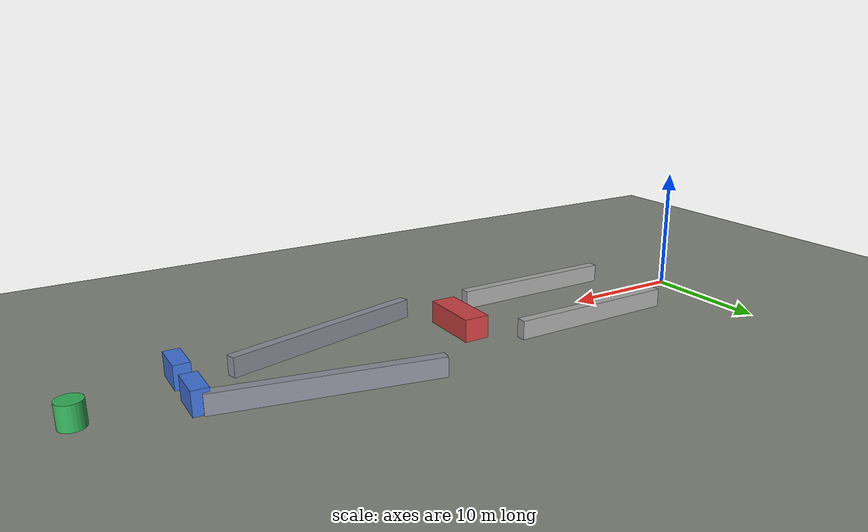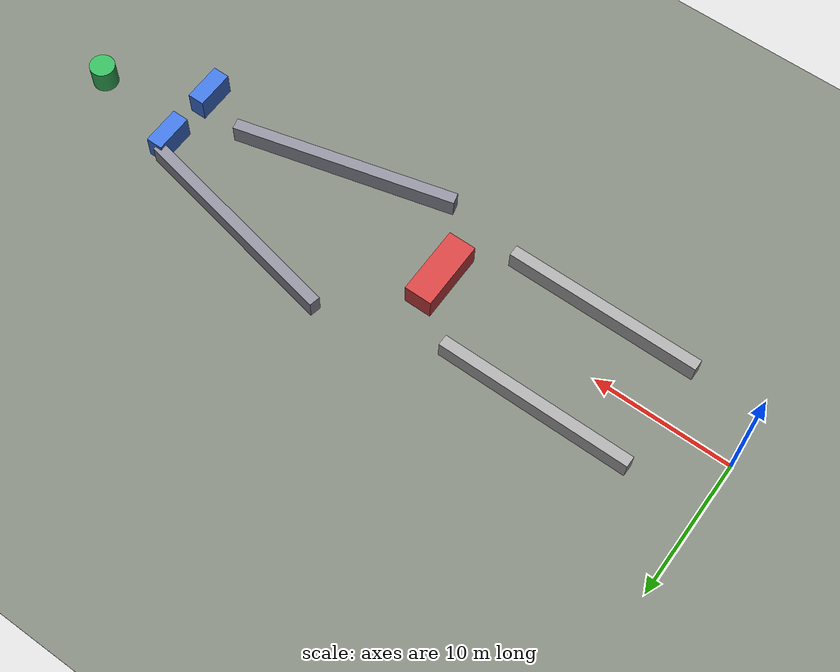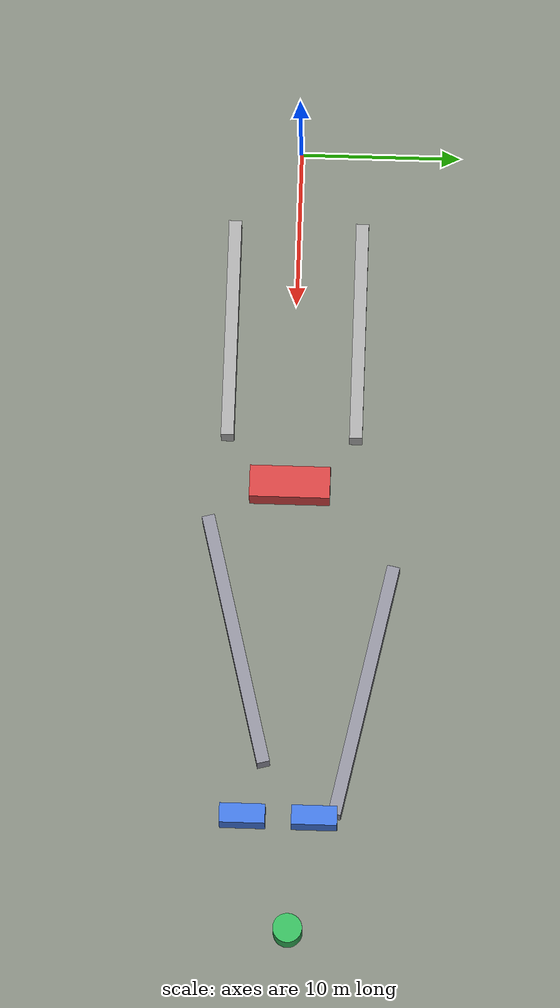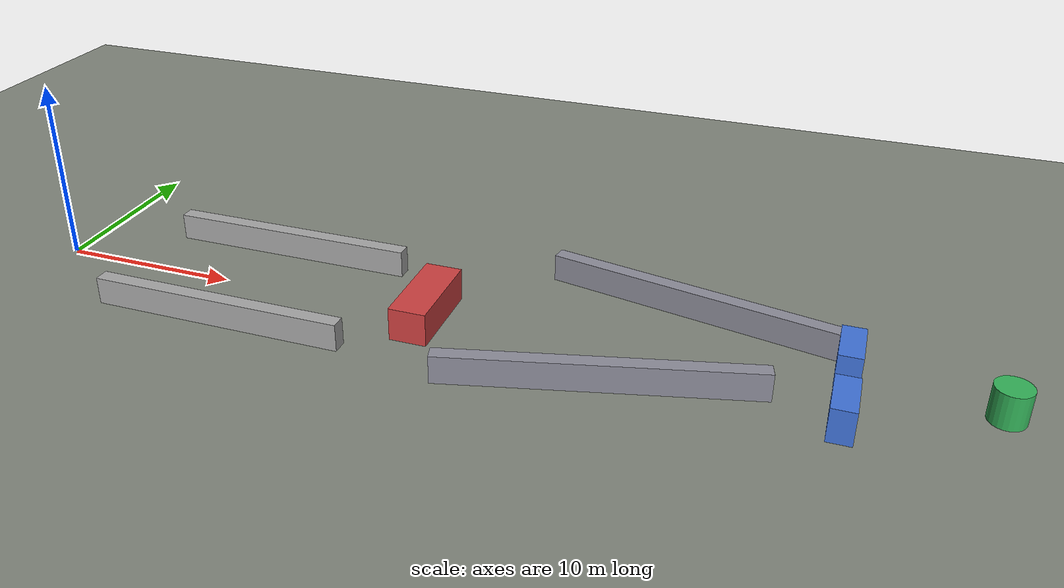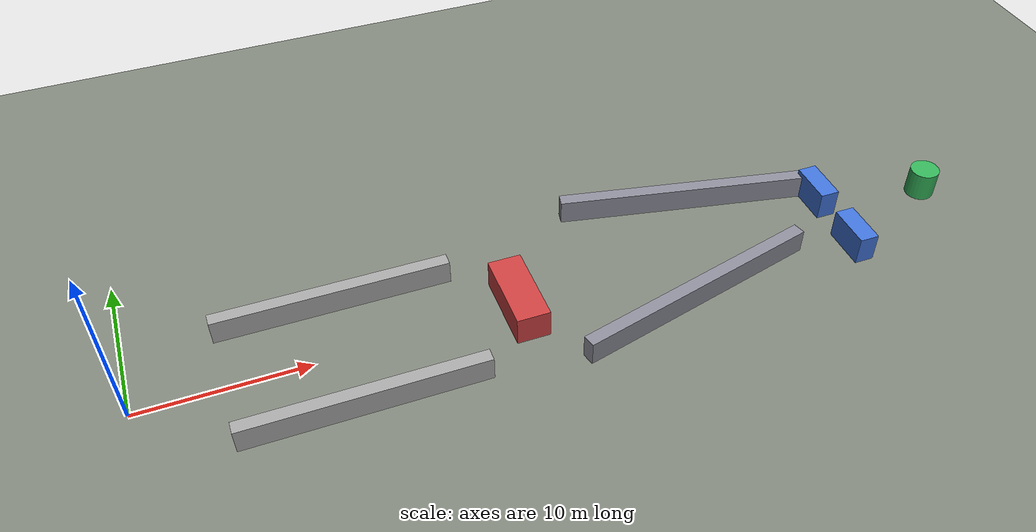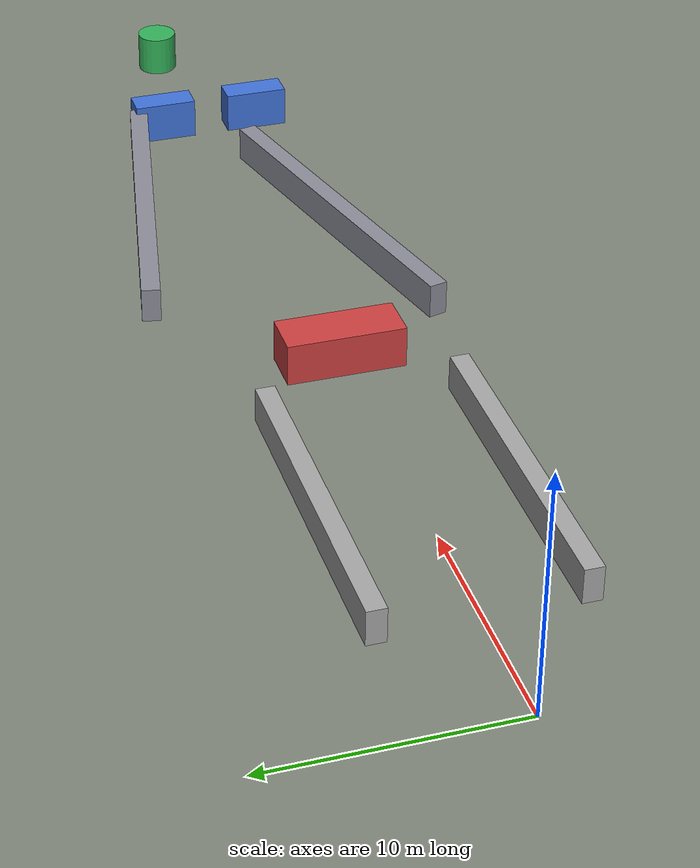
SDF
<?xml version="1.0" ?>
<sdf version="1.7">
  <world name="structured_maze_world">

    <plugin filename="libignition-gazebo-physics-system.so"
            name="ignition::gazebo::systems::Physics"/>
    <plugin filename="libignition-gazebo-user-commands-system.so"
            name="ignition::gazebo::systems::UserCommands"/>
    <plugin filename="libignition-gazebo-scene-broadcaster-system.so"
            name="ignition::gazebo::systems::SceneBroadcaster"/>
    <plugin filename="libignition-gazebo-sensors-system.so"
            name="ignition::gazebo::systems::Sensors"/>

    <physics name="default" type="ignored">
      <max_step_size>0.001</max_step_size>
      <real_time_factor>1.0</real_time_factor>
    </physics>

    <light name="sun" type="directional">
      <cast_shadows>true</cast_shadows>
      <pose>0 0 20 0 0 0</pose>
      <intensity>2.5</intensity>
      <diffuse>1 1 1 1</diffuse>
      <specular>0.2 0.2 0.2 1</specular>
      <attenuation>
        <range>1000</range>
        <constant>0.9</constant>
        <linear>0.01</linear>
        <quadratic>0.001</quadratic>
      </attenuation>
      <direction>-0.4 0.2 -1</direction>
    </light>

    <model name="ground_plane">
      <static>true</static>
      <pose>0 0 -0.02 0 0 0</pose>
      <link name="ground_link">
        <collision name="collision"><geometry><box><size>140 90 0.04</size></box></geometry></collision>
        <visual name="visual"><geometry><box><size>140 90 0.04</size></box></geometry><material><ambient>0.50 0.52 0.48 1</ambient><diffuse>0.50 0.52 0.48 1</diffuse></material></visual>
      </link>
    </model>

    <!-- Maze/corridor-like static walls. Start near x=0, goal usually around x=45-55. -->
    <model name="wall_lower_1">
      <static>true</static>
      <pose>12 -4 0.75 0 0 0</pose>
      <link name="link"><collision name="collision"><geometry><box><size>14 0.8 1.5</size></box></geometry></collision><visual name="visual"><geometry><box><size>14 0.8 1.5</size></box></geometry><material><ambient>0.65 0.65 0.65 1</ambient><diffuse>0.65 0.65 0.65 1</diffuse></material></visual></link>
    </model>

    <model name="wall_upper_1">
      <static>true</static>
      <pose>12 4 0.75 0 0 0</pose>
      <link name="link"><collision name="collision"><geometry><box><size>14 0.8 1.5</size></box></geometry></collision><visual name="visual"><geometry><box><size>14 0.8 1.5</size></box></geometry><material><ambient>0.65 0.65 0.65 1</ambient><diffuse>0.65 0.65 0.65 1</diffuse></material></visual></link>
    </model>

    <model name="center_block_left_choice">
      <static>true</static>
      <pose>22 0 0.9 0 0 0</pose>
      <link name="link"><collision name="collision"><geometry><box><size>2.0 5.0 1.8</size></box></geometry></collision><visual name="visual"><geometry><box><size>2.0 5.0 1.8</size></box></geometry><material><ambient>0.8 0.25 0.25 1</ambient><diffuse>0.8 0.25 0.25 1</diffuse></material></visual></link>
    </model>

    <model name="wall_lower_2">
      <static>true</static>
      <pose>32 -3 0.75 0 0 0.25</pose>
      <link name="link"><collision name="collision"><geometry><box><size>16 0.8 1.5</size></box></geometry></collision><visual name="visual"><geometry><box><size>16 0.8 1.5</size></box></geometry><material><ambient>0.55 0.55 0.60 1</ambient><diffuse>0.55 0.55 0.60 1</diffuse></material></visual></link>
    </model>

    <model name="wall_upper_2">
      <static>true</static>
      <pose>35 5 0.75 0 0 -0.20</pose>
      <link name="link"><collision name="collision"><geometry><box><size>16 0.8 1.5</size></box></geometry></collision><visual name="visual"><geometry><box><size>16 0.8 1.5</size></box></geometry><material><ambient>0.55 0.55 0.60 1</ambient><diffuse>0.55 0.55 0.60 1</diffuse></material></visual></link>
    </model>

    <model name="narrow_gate_left_post">
      <static>true</static>
      <pose>43 -2.2 0.9 0 0 0</pose>
      <link name="link"><collision name="collision"><geometry><box><size>1.2 2.8 1.8</size></box></geometry></collision><visual name="visual"><geometry><box><size>1.2 2.8 1.8</size></box></geometry><material><ambient>0.25 0.45 0.85 1</ambient><diffuse>0.25 0.45 0.85 1</diffuse></material></visual></link>
    </model>

    <model name="narrow_gate_right_post">
      <static>true</static>
      <pose>43 2.2 0.9 0 0 0</pose>
      <link name="link"><collision name="collision"><geometry><box><size>1.2 2.8 1.8</size></box></geometry></collision><visual name="visual"><geometry><box><size>1.2 2.8 1.8</size></box></geometry><material><ambient>0.25 0.45 0.85 1</ambient><diffuse>0.25 0.45 0.85 1</diffuse></material></visual></link>
    </model>

    <model name="cylinder_obstacle_after_gate">
      <static>true</static>
      <pose>50 0.8 0.9 0 0 0</pose>
      <link name="link"><collision name="collision"><geometry><cylinder><radius>0.9</radius><length>1.8</length></cylinder></geometry></collision><visual name="visual"><geometry><cylinder><radius>0.9</radius><length>1.8</length></cylinder></geometry><material><ambient>0.20 0.70 0.35 1</ambient><diffuse>0.20 0.70 0.35 1</diffuse></material></visual></link>
    </model>

  </world>
</sdf>
